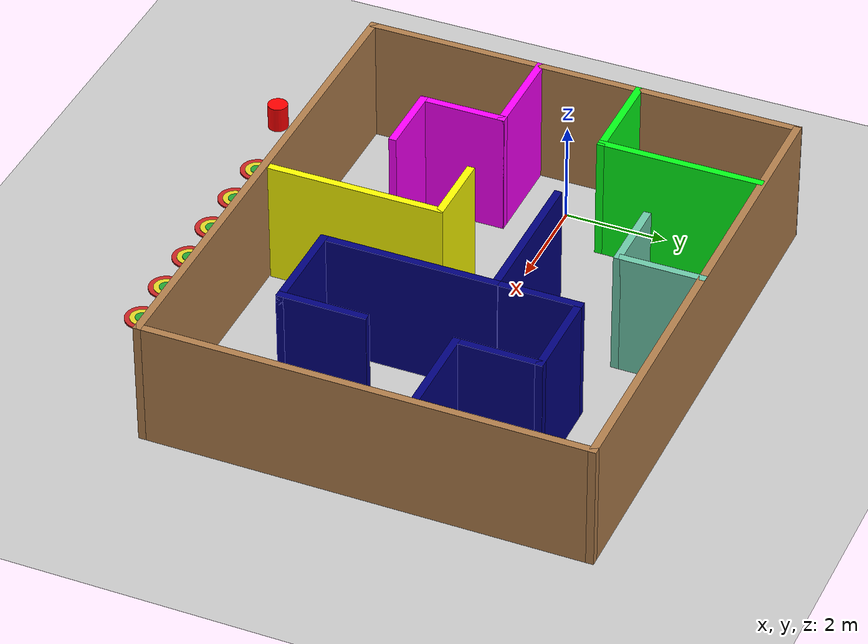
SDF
<sdf version="1.4">
 <world name="default">
  <light name="sun" type="directional">
   <pose>0 0 10 0 -0 0</pose>
   <diffuse>0.8 0.8 0.8 1</diffuse>
   <specular>0.2 0.2 0.2 1</specular>
   <attenuation>
    <range>1000</range>
    <constant>0.9</constant>
    <linear>0.01</linear>
    <quadratic>0.001</quadratic>
   </attenuation>
   <direction>0.5 0.1 -0.9</direction>
  </light>
  <model name="ground_plane">
   <static>1</static>
   <link name="link">
    <collision name="collision">
     <geometry><plane><normal>0 0 1</normal><size>100 100</size></plane></geometry>
     <surface><friction><ode><mu>100</mu><mu2>50</mu2></ode></friction></surface>
    </collision>
    <visual name="visual">
     <cast_shadows>0</cast_shadows>
     <geometry><plane><normal>0 0 1</normal><size>100 100</size></plane></geometry>
     <material>
      <script><uri>file://media/materials/scripts/gazebo.material</uri><name>Gazebo/Grey</name></script>
     </material>
    </visual>
    <velocity_decay><linear>0</linear><angular>0</angular></velocity_decay>
   </link>
  </model>
  <scene><ambient>0.4 0.4 0.4 1</ambient><background>0.7 0.7 0.7 1</background><shadows>0</shadows></scene>
  <physics type="ode">
   <max_step_size>0.01</max_step_size>
   <real_time_factor>1</real_time_factor>
   <real_time_update_rate>0</real_time_update_rate>
   <gravity>0 0 -9.8</gravity>
  </physics>
  <include><name>Maze</name><uri>model://MazeColor</uri><pose>4 -0.15 0 0 -0 -1.5708</pose></include>
  <include><name>Target</name><uri>model://TargetCylinder</uri><pose>-0.5 -6.25 0 0 0 0</pose></include>
  <include><name>Hint0</name><uri>model://Hint</uri><pose>1 -6 0 0 0 0</pose></include>
  <include><name>Hint1</name><uri>model://Hint</uri><pose>2 -6 0 0 0 0</pose></include>
  <include><name>Hint2</name><uri>model://Hint</uri><pose>3 -6 0 0 0 0</pose></include>
  <include><name>Hint3</name><uri>model://Hint</uri><pose>4 -6 0 0 0 0</pose></include>
  <include><name>Hint4</name><uri>model://Hint</uri><pose>5 -6 0 0 0 0</pose></include>
  <include><name>Hint5</name><uri>model://Hint</uri><pose>6 -6 0 0 0 0</pose></include>
 </world>
</sdf>

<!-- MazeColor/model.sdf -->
<sdf version='1.6'>
  <model name='MazeColor'>
    <pose frame=''>0.145817 4.56157 0 0 -0 0</pose>
    <link name='Wall_0'>
      <collision name='Wall_0_Collision'>
        <geometry>
          <box>
            <size>10.25 0.15 2.5</size>
          </box>
        </geometry>
        <pose frame=''>0 0 1.25 0 -0 0</pose>
      </collision>
      <visual name='Wall_0_Visual'>
        <pose frame=''>0 0 1.25 0 -0 0</pose>
        <geometry>
          <box>
            <size>10.25 0.15 2.5</size>
          </box>
        </geometry>
        <material>
          <script>
            <uri>file://media/materials/scripts/gazebo.material</uri>
            <name>Gazebo/Wood</name>
          </script>
          <ambient>1 1 1 1</ambient>
        </material>
        <meta>
          <layer>0</layer>
        </meta>
      </visual>
      <pose frame=''>-4.3 0.011565 0 0 -0 -1.5708</pose>
    </link>
    <link name='Wall_1'>
      <collision name='Wall_1_Collision'>
        <geometry>
          <box>
            <size>8.75 0.15 2.5</size>
          </box>
        </geometry>
        <pose frame=''>0 0 1.25 0 -0 0</pose>
      </collision>
      <visual name='Wall_1_Visual'>
        <pose frame=''>0 0 1.25 0 -0 0</pose>
        <geometry>
          <box>
            <size>8.75 0.15 2.5</size>
          </box>
        </geometry>
        <material>
          <script>
            <uri>file://media/materials/scripts/gazebo.material</uri>
            <name>Gazebo/Wood</name>
          </script>
          <ambient>1 1 1 1</ambient>
        </material>
        <meta>
          <layer>0</layer>
        </meta>
      </visual>
      <pose frame=''>-0 -5.06157 0 0 -0 0</pose>
    </link>
    <link name='Wall_11'>
      <collision name='Wall_11_Collision'>
        <geometry>
          <box>
            <size>3.5 0.15 2.5</size>
          </box>
        </geometry>
        <pose frame=''>0 0 1.25 0 -0 0</pose>
      </collision>
      <visual name='Wall_11_Visual'>
        <pose frame=''>0 0 1.25 0 -0 0</pose>
        <geometry>
          <box>
            <size>3.5 0.15 2.5</size>
          </box>
        </geometry>
        <material>
          <script>
            <uri>file://media/materials/scripts/gazebo.material</uri>
            <name>Gazebo/Grey</name>
          </script>
          <ambient>0 0 0.498039 1</ambient>
        </material>
        <meta>
          <layer>0</layer>
        </meta>
      </visual>
      <pose frame=''>0.713183 1.43843 0 0 -0 3.14159</pose>
    </link>
    <link name='Wall_14'>
      <collision name='Wall_14_Collision'>
        <geometry>
          <box>
            <size>1.5 0.15 2.5</size>
          </box>
        </geometry>
        <pose frame=''>0 0 1.25 0 -0 0</pose>
      </collision>
      <visual name='Wall_14_Visual'>
        <pose frame=''>0 0 1.25 0 -0 0</pose>
        <geometry>
          <box>
            <size>1.5 0.15 2.5</size>
          </box>
        </geometry>
        <material>
          <script>
            <uri>file://media/materials/scripts/gazebo.material</uri>
            <name>Gazebo/Grey</name>
          </script>
          <ambient>0.435294 0.796078 0.67451 1</ambient>
        </material>
        <meta>
          <layer>0</layer>
        </meta>
      </visual>
      <pose frame=''>-2.69715 -0.807102 0 0 -0 1.5708</pose>
    </link>
    <link name='Wall_16'>
      <collision name='Wall_16_Collision'>
        <geometry>
          <box>
            <size>1.75 0.15 2.5</size>
          </box>
        </geometry>
        <pose frame=''>0 0 1.25 0 -0 0</pose>
      </collision>
      <visual name='Wall_16_Visual'>
        <pose frame=''>0 0 1.25 0 -0 0</pose>
        <geometry>
          <box>
            <size>1.75 0.15 2.5</size>
          </box>
        </geometry>
        <material>
          <script>
            <uri>file://media/materials/scripts/gazebo.material</uri>
            <name>Gazebo/Grey</name>
          </script>
          <ambient>0.435294 0.796078 0.67451 1</ambient>
        </material>
        <meta>
          <layer>0</layer>
        </meta>
      </visual>
      <pose frame=''>-3.49715 -0.132102 0 0 -0 3.14159</pose>
    </link>
    <link name='Wall_18'>
      <collision name='Wall_18_Collision'>
        <geometry>
          <box>
            <size>3.03 0.15 2.5</size>
          </box>
        </geometry>
        <pose frame=''>0 0 1.25 0 -0 0</pose>
      </collision>
      <visual name='Wall_18_Visual'>
        <pose frame=''>0 0 1.25 0 -0 0</pose>
        <geometry>
          <box>
            <size>3.03 0.15 2.5</size>
          </box>
        </geometry>
        <material>
          <script>
            <uri>file://media/materials/scripts/gazebo.material</uri>
            <name>Gazebo/Grey</name>
          </script>
          <ambient>0 0 0.498039 1</ambient>
        </material>
        <meta>
          <layer>0</layer>
        </meta>
      </visual>
      <pose frame=''>-0.972817 -0.001566 0 0 -0 1.5708</pose>
    </link>
    <link name='Wall_2'>
      <collision name='Wall_2_Collision'>
        <geometry>
          <box>
            <size>10.2733 0.15 2.5</size>
          </box>
        </geometry>
        <pose frame=''>0 0 1.25 0 -0 0</pose>
      </collision>
      <visual name='Wall_2_Visual'>
        <pose frame=''>0 0 1.25 0 -0 0</pose>
        <geometry>
          <box>
            <size>10.2733 0.15 2.5</size>
          </box>
        </geometry>
        <material>
          <script>
            <uri>file://media/materials/scripts/gazebo.material</uri>
            <name>Gazebo/Wood</name>
          </script>
          <ambient>1 1 1 1</ambient>
        </material>
        <meta>
          <layer>0</layer>
        </meta>
      </visual>
      <pose frame=''>4.3 -0 0 0 -0 1.5708</pose>
    </link>
    <link name='Wall_21'>
      <collision name='Wall_21_Collision'>
        <geometry>
          <box>
            <size>1.75 0.15 2.5</size>
          </box>
        </geometry>
        <pose frame=''>0 0 1.25 0 -0 0</pose>
      </collision>
      <visual name='Wall_21_Visual'>
        <pose frame=''>0 0 1.25 0 -0 0</pose>
        <geometry>
          <box>
            <size>1.75 0.15 2.5</size>
          </box>
        </geometry>
        <material>
          <script>
            <uri>file://media/materials/scripts/gazebo.material</uri>
            <name>Gazebo/Grey</name>
          </script>
          <ambient>0 0 0.498039 1</ambient>
        </material>
        <meta>
          <layer>0</layer>
        </meta>
      </visual>
      <pose frame=''>-1.77282 1.43843 0 0 -0 3.14159</pose>
    </link>
    <link name='Wall_24'>
      <collision name='Wall_24_Collision'>
        <geometry>
          <box>
            <size>1.95 0.15 2.5</size>
          </box>
        </geometry>
        <pose frame=''>0 0 1.25 0 -0 0</pose>
      </collision>
      <visual name='Wall_24_Visual'>
        <pose frame=''>0 0 1.25 0 -0 0</pose>
        <geometry>
          <box>
            <size>1.95 0.15 2.5</size>
          </box>
        </geometry>
        <material>
          <script>
            <uri>file://media/materials/scripts/gazebo.material</uri>
            <name>Gazebo/Grey</name>
          </script>
          <ambient>0 0 0.498039 1</ambient>
        </material>
        <meta>
          <layer>0</layer>
        </meta>
      </visual>
      <pose frame=''>-2.57282 2.33843 0 0 -0 1.5708</pose>
    </link>
    <link name='Wall_26'>
      <collision name='Wall_26_Collision'>
        <geometry>
          <box>
            <size>1.75212 0.15 2.5</size>
          </box>
        </geometry>
        <pose frame=''>0 0 1.25 0 -0 0</pose>
      </collision>
      <visual name='Wall_26_Visual'>
        <pose frame=''>0 0 1.25 0 -0 0</pose>
        <geometry>
          <box>
            <size>1.75212 0.15 2.5</size>
          </box>
        </geometry>
        <material>
          <script>
            <uri>file://media/materials/scripts/gazebo.material</uri>
            <name>Gazebo/Grey</name>
          </script>
          <ambient>0 0 0.498039 1</ambient>
        </material>
        <meta>
          <layer>0</layer>
        </meta>
      </visual>
      <pose frame=''>-1.77182 3.23843 0 0 -0 0</pose>
    </link>
    <link name='Wall_27'>
      <collision name='Wall_27_Collision'>
        <geometry>
          <box>
            <size>1.8234 0.15 2.5</size>
          </box>
        </geometry>
        <pose frame=''>0 0 1.25 0 -0 0</pose>
      </collision>
      <visual name='Wall_27_Visual'>
        <pose frame=''>0 0 1.25 0 -0 0</pose>
        <geometry>
          <box>
            <size>1.8234 0.15 2.5</size>
          </box>
        </geometry>
        <material>
          <script>
            <uri>file://media/materials/scripts/gazebo.material</uri>
            <name>Gazebo/Grey</name>
          </script>
          <ambient>0 0 0.498039 1</ambient>
        </material>
        <meta>
          <layer>0</layer>
        </meta>
      </visual>
      <pose frame=''>-0.970817 4.07493 0 0 -0 1.5708</pose>
    </link>
    <link name='Wall_29'>
      <collision name='Wall_29_Collision'>
        <geometry>
          <box>
            <size>8.75 0.15 2.5</size>
          </box>
        </geometry>
        <pose frame=''>0 0 1.25 0 -0 0</pose>
      </collision>
      <visual name='Wall_29_Visual'>
        <pose frame=''>0 0 1.25 0 -0 0</pose>
        <geometry>
          <box>
            <size>8.75 0.15 2.5</size>
          </box>
        </geometry>
        <material>
          <script>
            <uri>file://media/materials/scripts/gazebo.material</uri>
            <name>Gazebo/Wood</name>
          </script>
          <ambient>1 1 1 1</ambient>
        </material>
        <meta>
          <layer>0</layer>
        </meta>
      </visual>
      <pose frame=''>-0 5.06156 0 0 -0 0</pose>
    </link>
    <link name='Wall_31'>
      <collision name='Wall_31_Collision'>
        <geometry>
          <box>
            <size>1.5 0.15 2.5</size>
          </box>
        </geometry>
        <pose frame=''>0 0 1.25 0 -0 0</pose>
      </collision>
      <visual name='Wall_31_Visual'>
        <pose frame=''>0 0 1.25 0 -0 0</pose>
        <geometry>
          <box>
            <size>1.5 0.15 2.5</size>
          </box>
        </geometry>
        <material>
          <script>
            <uri>file://media/materials/scripts/gazebo.material</uri>
            <name>Gazebo/Grey</name>
          </script>
          <ambient>1 1 0 1</ambient>
        </material>
        <meta>
          <layer>0</layer>
        </meta>
      </visual>
      <pose frame=''>0.78143 -0.827346 0 0 -0 1.5708</pose>
    </link>
    <link name='Wall_32'>
      <collision name='Wall_32_Collision'>
        <geometry>
          <box>
            <size>3.5 0.15 2.5</size>
          </box>
        </geometry>
        <pose frame=''>0 0 1.25 0 -0 0</pose>
      </collision>
      <visual name='Wall_32_Visual'>
        <pose frame=''>0 0 1.25 0 -0 0</pose>
        <geometry>
          <box>
            <size>3.5 0.15 2.5</size>
          </box>
        </geometry>
        <material>
          <script>
            <uri>file://media/materials/scripts/gazebo.material</uri>
            <name>Gazebo/Grey</name>
          </script>
          <ambient>1 1 0 1</ambient>
        </material>
        <meta>
          <layer>0</layer>
        </meta>
      </visual>
      <pose frame=''>2.45643 -0.152346 0 0 -0 0</pose>
    </link>
    <link name='Wall_34'>
      <collision name='Wall_34_Collision'>
        <geometry>
          <box>
            <size>1.5 0.15 2.5</size>
          </box>
        </geometry>
        <pose frame=''>0 0 1.25 0 -0 0</pose>
      </collision>
      <visual name='Wall_34_Visual'>
        <pose frame=''>0 0 1.25 0 -0 0</pose>
        <geometry>
          <box>
            <size>1.5 0.15 2.5</size>
          </box>
        </geometry>
        <material>
          <script>
            <uri>file://media/materials/scripts/gazebo.material</uri>
            <name>Gazebo/Grey</name>
          </script>
          <ambient>1 0 1 1</ambient>
        </material>
        <meta>
          <layer>0</layer>
        </meta>
      </visual>
      <pose frame=''>2.45418 -2.53657 0 0 -0 1.5708</pose>
    </link>
    <link name='Wall_36'>
      <collision name='Wall_36_Collision'>
        <geometry>
          <box>
            <size>1.95 0.15 2.5</size>
          </box>
        </geometry>
        <pose frame=''>0 0 1.25 0 -0 0</pose>
      </collision>
      <visual name='Wall_36_Visual'>
        <pose frame=''>0 0 1.25 0 -0 0</pose>
        <geometry>
          <box>
            <size>1.95 0.15 2.5</size>
          </box>
        </geometry>
        <material>
          <script>
            <uri>file://media/materials/scripts/gazebo.material</uri>
            <name>Gazebo/Grey</name>
          </script>
          <ambient>0 0 0.498039 1</ambient>
        </material>
        <meta>
          <layer>0</layer>
        </meta>
      </visual>
      <pose frame=''>2.38818 2.33843 0 0 -0 1.5708</pose>
    </link>
    <link name='Wall_37'>
      <collision name='Wall_37_Collision'>
        <geometry>
          <box>
            <size>1.75 0.15 2.5</size>
          </box>
        </geometry>
        <pose frame=''>0 0 1.25 0 -0 0</pose>
      </collision>
      <visual name='Wall_37_Visual'>
        <pose frame=''>0 0 1.25 0 -0 0</pose>
        <geometry>
          <box>
            <size>1.75 0.15 2.5</size>
          </box>
        </geometry>
        <material>
          <script>
            <uri>file://media/materials/scripts/gazebo.material</uri>
            <name>Gazebo/Grey</name>
          </script>
          <ambient>0 0 0.498039 1</ambient>
        </material>
        <meta>
          <layer>0</layer>
        </meta>
      </visual>
      <pose frame=''>1.58818 3.23843 0 0 -0 3.14159</pose>
    </link>
    <link name='Wall_4'>
      <collision name='Wall_4_Collision'>
        <geometry>
          <box>
            <size>3.25 0.15 2.5</size>
          </box>
        </geometry>
        <pose frame=''>0 0 1.25 0 -0 0</pose>
      </collision>
      <visual name='Wall_4_Visual'>
        <pose frame=''>0 0 1.25 0 -0 0</pose>
        <geometry>
          <box>
            <size>3.25 0.15 2.5</size>
          </box>
        </geometry>
        <material>
          <script>
            <uri>file://media/materials/scripts/gazebo.material</uri>
            <name>Gazebo/Grey</name>
          </script>
          <ambient>0.0196078 1 0.0980392 1</ambient>
        </material>
        <meta>
          <layer>0</layer>
        </meta>
      </visual>
      <pose frame=''>-2.69582 -3.21157 0 0 -0 0</pose>
    </link>
    <link name='Wall_5'>
      <collision name='Wall_5_Collision'>
        <geometry>
          <box>
            <size>2 0.15 2.5</size>
          </box>
        </geometry>
        <pose frame=''>0 0 1.25 0 -0 0</pose>
      </collision>
      <visual name='Wall_5_Visual'>
        <pose frame=''>0 0 1.25 0 -0 0</pose>
        <geometry>
          <box>
            <size>2 0.15 2.5</size>
          </box>
        </geometry>
        <material>
          <script>
            <uri>file://media/materials/scripts/gazebo.material</uri>
            <name>Gazebo/Grey</name>
          </script>
          <ambient>0.0196078 1 0.0980392 1</ambient>
        </material>
        <meta>
          <layer>0</layer>
        </meta>
      </visual>
      <pose frame=''>-1.14582 -4.13657 0 0 -0 -1.5708</pose>
    </link>
    <link name='Wall_7'>
      <collision name='Wall_7_Collision'>
        <geometry>
          <box>
            <size>1.75 0.15 2.5</size>
          </box>
        </geometry>
        <pose frame=''>0 0 1.25 0 -0 0</pose>
      </collision>
      <visual name='Wall_7_Visual'>
        <pose frame=''>0 0 1.25 0 -0 0</pose>
        <geometry>
          <box>
            <size>1.75 0.15 2.5</size>
          </box>
        </geometry>
        <material>
          <script>
            <uri>file://media/materials/scripts/gazebo.material</uri>
            <name>Gazebo/Grey</name>
          </script>
          <ambient>1 0 1 1</ambient>
        </material>
        <meta>
          <layer>0</layer>
        </meta>
      </visual>
      <pose frame=''>1.65418 -3.21157 0 0 -0 3.14159</pose>
    </link>
    <link name='Wall_8'>
      <collision name='Wall_8_Collision'>
        <geometry>
          <box>
            <size>2 0.15 2.5</size>
          </box>
        </geometry>
        <pose frame=''>0 0 1.25 0 -0 0</pose>
      </collision>
      <visual name='Wall_8_Visual'>
        <pose frame=''>0 0 1.25 0 -0 0</pose>
        <geometry>
          <box>
            <size>2 0.15 2.5</size>
          </box>
        </geometry>
        <material>
          <script>
            <uri>file://media/materials/scripts/gazebo.material</uri>
            <name>Gazebo/Grey</name>
          </script>
          <ambient>1 0 1 1</ambient>
        </material>
        <meta>
          <layer>0</layer>
        </meta>
      </visual>
      <pose frame=''>0.854183 -4.13657 0 0 -0 -1.5708</pose>
    </link>
    <static>1</static>
  </model>
</sdf>

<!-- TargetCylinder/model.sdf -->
<sdf version='1.6'>
  <model name='TargetCylinder'>
    <link name='link'>
      <inertial>
        <mass>0.11974</mass>
        <inertia>
          <ixx>0.0108744</ixx>
          <ixy>0</ixy>
          <ixz>0</ixz>
          <iyy>0.0108744</iyy>
          <iyz>0</iyz>
          <izz>0.0017922</izz>
        </inertia>
        <pose frame=''>0 0 0 0 -0 0</pose>
      </inertial>
      <self_collide>0</self_collide>
      <enable_wind>0</enable_wind>
      <kinematic>0</kinematic>
      <pose frame=''>0 0 0 0 -0 0</pose>
      <gravity>1</gravity>
      <visual name='visual'>
        <geometry>
          <cylinder>
            <radius>0.2</radius>
            <length>1</length>
          </cylinder>
        </geometry>
        <material>
          <script>
            <name>Gazebo/Grey</name>
            <uri>file://media/materials/scripts/gazebo.material</uri>
          </script>
          <shader type='vertex'>
            <normal_map>__default__</normal_map>
          </shader>
          <ambient>1 0 0 1</ambient>
          <diffuse>0 0 0 1</diffuse>
          <specular>0 0 0 1</specular>
          <emissive>0 0 0 1</emissive>
        </material>
        <pose frame=''>0 0 0 0 -0 0</pose>
        <transparency>0</transparency>
        <cast_shadows>1</cast_shadows>
      </visual>
      <collision name='collision'>
        <laser_retro>0</laser_retro>
        <max_contacts>10</max_contacts>
        <pose frame=''>0 0 0 0 -0 0</pose>
        <geometry>
          <cylinder>
            <radius>0.173017</radius>
            <length>1</length>
          </cylinder>
        </geometry>
        <surface>
          <friction>
            <ode>
              <mu>1</mu>
              <mu2>1</mu2>
              <fdir1>0 0 0</fdir1>
              <slip1>0</slip1>
              <slip2>0</slip2>
            </ode>
            <torsional>
              <coefficient>1</coefficient>
              <patch_radius>0</patch_radius>
              <surface_radius>0</surface_radius>
              <use_patch_radius>1</use_patch_radius>
              <ode>
                <slip>0</slip>
              </ode>
            </torsional>
          </friction>
          <bounce>
            <restitution_coefficient>0</restitution_coefficient>
            <threshold>1e+06</threshold>
          </bounce>
          <contact>
            <collide_without_contact>0</collide_without_contact>
            <collide_without_contact_bitmask>1</collide_without_contact_bitmask>
            <collide_bitmask>1</collide_bitmask>
            <ode>
              <soft_cfm>0</soft_cfm>
              <soft_erp>0.2</soft_erp>
              <kp>1e+13</kp>
              <kd>1</kd>
              <max_vel>0.01</max_vel>
              <min_depth>0</min_depth>
            </ode>
            <bullet>
              <split_impulse>1</split_impulse>
              <split_impulse_penetration_threshold>-0.01</split_impulse_penetration_threshold>
              <soft_cfm>0</soft_cfm>
              <soft_erp>0.2</soft_erp>
              <kp>1e+13</kp>
              <kd>1</kd>
            </bullet>
          </contact>
        </surface>
      </collision>
    </link>
    <static>1</static>
    <allow_auto_disable>1</allow_auto_disable>
  </model>
</sdf>

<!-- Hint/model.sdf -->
<sdf version='1.6'>
  <model name='Hint'>
    <link name='green'>
      <pose frame=''>0 0 0 0 -0 0</pose>
      <self_collide>0</self_collide>
      <enable_wind>0</enable_wind>
      <kinematic>0</kinematic>
      <visual name='visual'>
        <geometry>
          <cylinder>
            <radius>0.130721</radius>
            <length>0.05</length>
          </cylinder>
        </geometry>
        <material>
          <script>
            <uri>file://media/materials/scripts/gazebo.material</uri>
            <name>Gazebo/Green</name>
          </script>
          <ambient>1 1 1 1</ambient>
        </material>
        <cast_shadows>0</cast_shadows>
        <transparency>0</transparency>
        <pose frame=''>0 0 0 0 -0 0</pose>
      </visual>
    </link>
    <link name='red'>
      <pose frame=''>0 0 0 0 -0 0</pose>
      <self_collide>0</self_collide>
      <enable_wind>0</enable_wind>
      <kinematic>0</kinematic>
      <visual name='visual'>
        <geometry>
          <cylinder>
            <radius>0.333835</radius>
            <length>0.03</length>
          </cylinder>
        </geometry>
        <material>
          <script>
            <uri>file://media/materials/scripts/gazebo.material</uri>
            <name>Gazebo/Red</name>
          </script>
          <ambient>1 1 1 1</ambient>
        </material>
        <cast_shadows>0</cast_shadows>
        <transparency>0</transparency>
        <pose frame=''>0 0 0 0 -0 0</pose>
      </visual>
    </link>
    <link name='yellow'>
      <pose frame=''>0 0 0 0 -0 0</pose>
      <self_collide>0</self_collide>
      <enable_wind>0</enable_wind>
      <kinematic>0</kinematic>
      <visual name='visual'>
        <geometry>
          <cylinder>
            <radius>0.235256</radius>
            <length>0.04</length>
          </cylinder>
        </geometry>
        <material>
          <script>
            <uri>file://media/materials/scripts/gazebo.material</uri>
            <name>Gazebo/Yellow</name>
          </script>
          <ambient>1 1 1 1</ambient>
        </material>
        <cast_shadows>0</cast_shadows>
        <transparency>0</transparency>
        <pose frame=''>0 0 0 0 -0 0</pose>
      </visual>
    </link>
    <static>1</static>
    <allow_auto_disable>1</allow_auto_disable>
  </model>
</sdf>
